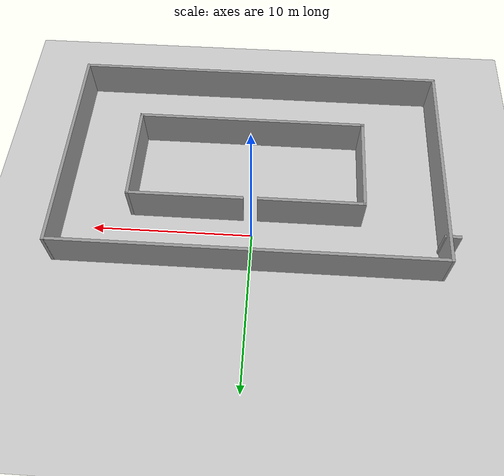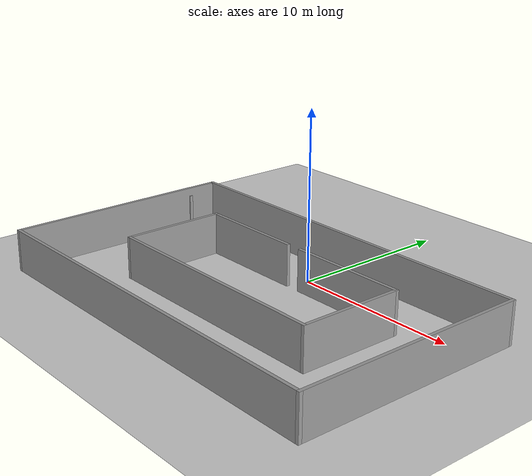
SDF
<sdf version="1.4">
 <world name="default">
  <light name="sun" type="directional">
   <pose>0 0 10 0 -0 0</pose>
   <diffuse>0.8 0.8 0.8 1</diffuse>
   <specular>0.2 0.2 0.2 1</specular>
   <attenuation>
    <range>1000</range>
    <constant>0.9</constant>
    <linear>0.01</linear>
    <quadratic>0.001</quadratic>
   </attenuation>
   <direction>-0.5 0.1 -0.9</direction>
  </light>
  <model name="ground_plane">
   <static>1</static>
   <link name="link">
    <collision name="collision">
     <geometry><plane><normal>0 0 1</normal><size>100 100</size></plane></geometry>
     <surface><friction><ode><mu>100</mu><mu2>50</mu2></ode></friction></surface>
    </collision>
    <visual name="visual">
     <cast_shadows>0</cast_shadows>
     <geometry><plane><normal>0 0 1</normal><size>100 100</size></plane></geometry>
     <material>
      <script><uri>file://media/materials/scripts/gazebo.material</uri><name>Gazebo/Grey</name></script>
     </material>
    </visual>
    <velocity_decay><linear>0</linear><angular>0</angular></velocity_decay>
   </link>
  </model>
  <physics type="ode">
   <max_step_size>0.001</max_step_size>
   <real_time_factor>1</real_time_factor>
   <real_time_update_rate>1000</real_time_update_rate>
   <gravity>0 0 -9.8</gravity>
  </physics>
  <scene><ambient>0.4 0.4 0.4 1</ambient><background>0.7 0.7 0.7 1</background><shadows>1</shadows></scene>
  <spherical_coordinates>
   <surface_model>EARTH_WGS84</surface_model>
   <latitude_deg>0</latitude_deg>
   <longitude_deg>0</longitude_deg>
   <elevation>0</elevation>
   <heading_deg>0</heading_deg>
  </spherical_coordinates>
  <model name="double_circle_1m">
   <link name="Door_1">
    <collision name="Door_1_Collision">
     <geometry><box><size>1 0.2 2</size></box></geometry>
     <pose>0 0 1 0 -0 0</pose>
    </collision>
    <visual name="Door_1_Visual">
     <pose>0 0 1 0 -0 0</pose>
     <geometry><box><size>1 0.2 2</size></box></geometry>
     <material>
      <script><uri>file://media/materials/scripts/gazebo.material</uri><name>Gazebo/Grey</name></script>
     </material>
    </visual>
    <velocity_decay><linear>0</linear><angular>0</angular></velocity_decay>
    <pose>-12.0219 0.429125 0 0 -0 0</pose>
   </link>
   <link name="Wall_11">
    <collision name="Wall_11_Collision">
     <geometry><box><size>14.116 0.2 2.5</size></box></geometry>
     <pose>0 0 1.25 0 -0 0</pose>
    </collision>
    <visual name="Wall_11_Visual">
     <pose>0 0 1.25 0 -0 0</pose>
     <geometry><box><size>14.116 0.2 2.5</size></box></geometry>
     <material>
      <script><uri>file://media/materials/scripts/gazebo.material</uri><name>Gazebo/Grey</name></script>
     </material>
    </visual>
    <velocity_decay><linear>0</linear><angular>0</angular></velocity_decay>
    <pose>-11.7026 -4.67341 0 0 0 -1.5708</pose>
   </link>
   <link name="Wall_12">
    <collision name="Wall_12_Collision">
     <geometry><box><size>23.9865 0.2 2.5</size></box></geometry>
     <pose>0 0 1.25 0 -0 0</pose>
    </collision>
    <visual name="Wall_12_Visual">
     <pose>0 0 1.25 0 -0 0</pose>
     <geometry><box><size>23.9865 0.2 2.5</size></box></geometry>
     <material>
      <script><uri>file://media/materials/scripts/gazebo.material</uri><name>Gazebo/Grey</name></script>
     </material>
    </visual>
    <velocity_decay><linear>0</linear><angular>0</angular></velocity_decay>
    <pose>0.190692 -11.6314 0 0 -0 0</pose>
   </link>
   <link name="Wall_13">
    <collision name="Wall_13_Collision">
     <geometry><box><size>14.1312 0.2 2.5</size></box></geometry>
     <pose>0 0 1.25 0 -0 0</pose>
    </collision>
    <visual name="Wall_13_Visual">
     <pose>0 0 1.25 0 -0 0</pose>
     <geometry><box><size>14.1312 0.2 2.5</size></box></geometry>
     <material>
      <script><uri>file://media/materials/scripts/gazebo.material</uri><name>Gazebo/Grey</name></script>
     </material>
    </visual>
    <velocity_decay><linear>0</linear><angular>0</angular></velocity_decay>
    <pose>12.0839 -4.66581 0 0 -0 1.5708</pose>
   </link>
   <link name="Wall_14">
    <collision name="Wall_14_Collision">
     <geometry><box><size>23.9865 0.2 2.5</size></box></geometry>
     <pose>0 0 1.25 0 -0 0</pose>
    </collision>
    <visual name="Wall_14_Visual">
     <pose>0 0 1.25 0 -0 0</pose>
     <geometry><box><size>23.9865 0.2 2.5</size></box></geometry>
     <material>
      <script><uri>file://media/materials/scripts/gazebo.material</uri><name>Gazebo/Grey</name></script>
     </material>
    </visual>
    <velocity_decay><linear>0</linear><angular>0</angular></velocity_decay>
    <pose>0.190692 2.2922 0 0 0 -3.14095</pose>
   </link>
   <link name="Wall_16">
    <collision name="Wall_16_Collision">
     <geometry><box><size>6.60288 0.2 2.5</size></box></geometry>
     <pose>0 0 1.25 0 -0 0</pose>
    </collision>
    <visual name="Wall_16_Visual">
     <pose>0 0 1.25 0 -0 0</pose>
     <geometry><box><size>6.60288 0.2 2.5</size></box></geometry>
     <material>
      <script><uri>file://media/materials/scripts/gazebo.material</uri><name>Gazebo/Grey</name></script>
     </material>
    </visual>
    <velocity_decay><linear>0</linear><angular>0</angular></velocity_decay>
    <pose>-3.57347 -1.24384 0 0 -0 3.14159</pose>
   </link>
   <link name="Wall_17">
    <collision name="Wall_17_Collision">
     <geometry><box><size>6.32913 0.2 2.5</size></box></geometry>
     <pose>0 0 1.25 0 -0 0</pose>
    </collision>
    <visual name="Wall_17_Visual">
     <pose>0 0 1.25 0 -0 0</pose>
     <geometry><box><size>6.32913 0.2 2.5</size></box></geometry>
     <material>
      <script><uri>file://media/materials/scripts/gazebo.material</uri><name>Gazebo/Grey</name></script>
     </material>
    </visual>
    <velocity_decay><linear>0</linear><angular>0</angular></velocity_decay>
    <pose>-6.77492 -4.3084 0 0 0 -1.5708</pose>
   </link>
   <link name="Wall_18">
    <collision name="Wall_18_Collision">
     <geometry><box><size>14.6787 0.2 2.5</size></box></geometry>
     <pose>0 0 1.25 0 -0 0</pose>
    </collision>
    <visual name="Wall_18_Visual">
     <pose>0 0 1.25 0 -0 0</pose>
     <geometry><box><size>14.6787 0.2 2.5</size></box></geometry>
     <material>
      <script><uri>file://media/materials/scripts/gazebo.material</uri><name>Gazebo/Grey</name></script>
     </material>
    </visual>
    <velocity_decay><linear>0</linear><angular>0</angular></velocity_decay>
    <pose>0.46445 -7.37296 0 0 -0 0</pose>
   </link>
   <link name="Wall_19">
    <collision name="Wall_19_Collision">
     <geometry><box><size>6.34435 0.2 2.5</size></box></geometry>
     <pose>0 0 1.25 0 -0 0</pose>
    </collision>
    <visual name="Wall_19_Visual">
     <pose>0 0 1.25 0 -0 0</pose>
     <geometry><box><size>6.34435 0.2 2.5</size></box></geometry>
     <material>
      <script><uri>file://media/materials/scripts/gazebo.material</uri><name>Gazebo/Grey</name></script>
     </material>
    </visual>
    <velocity_decay><linear>0</linear><angular>0</angular></velocity_decay>
    <pose>7.70381 -4.3008 0 0 -0 1.5708</pose>
   </link>
   <link name="Wall_20">
    <collision name="Wall_20_Collision">
     <geometry><box><size>7.22651 0.2 2.5</size></box></geometry>
     <pose>0 0 1.25 0 -0 0</pose>
    </collision>
    <visual name="Wall_20_Visual">
     <pose>0 0 1.25 0 -0 0</pose>
     <geometry><box><size>7.22651 0.2 2.5</size></box></geometry>
     <material>
      <script><uri>file://media/materials/scripts/gazebo.material</uri><name>Gazebo/Grey</name></script>
     </material>
    </visual>
    <velocity_decay><linear>0</linear><angular>0</angular></velocity_decay>
    <pose>4.19056 -1.22863 0 0 -0 3.14159</pose>
   </link>
   <static>1</static>
  </model>
 </world>
</sdf>
